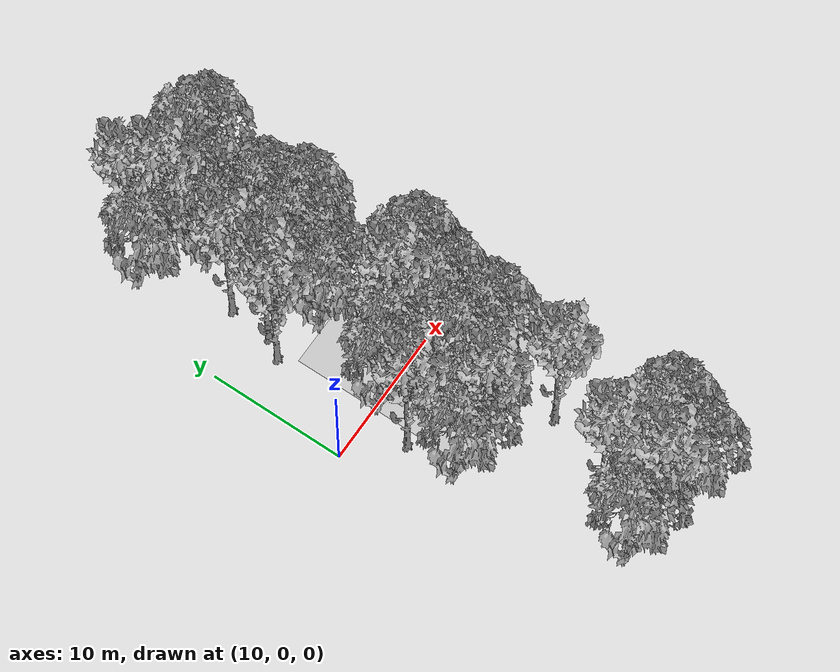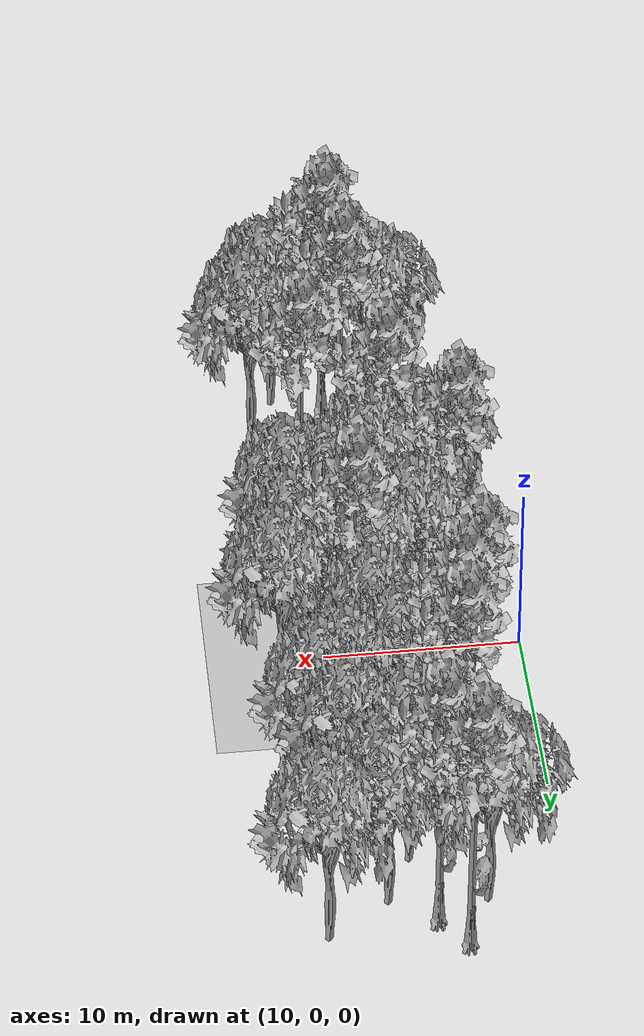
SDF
<sdf version="1.7">
 <world name="default">
  <model name="ground_plane">
   <static>1</static>
   <link name="link">
    <collision name="collision">
     <pose>20.0 0 0 0 -0 0</pose>
     <geometry><plane><normal>0 0 1</normal><size>40 40</size></plane></geometry>
     <surface><contact><ode><min_depth>0.01</min_depth><max_vel>0</max_vel></ode></contact></surface>
    </collision>
    <visual name="grass">
     <pose>20.0 0 0 0 -0 0</pose>
     <cast_shadows>0</cast_shadows>
     <geometry>
      <mesh>
       <scale>0.22052631578947368 0.22621621621621624 0.1</scale>
       <uri>model://grass_plane/meshes/grass_plane.dae</uri>
      </mesh>
     </geometry>
    </visual>
   </link>
  </model>
  <model name="Tree 5">
   <static>1</static>
   <pose>20.72942979063412 -19.918940171972803 0 1.57079 -0 0</pose>
   <link name="link">
    <collision name="collision">
     <geometry><mesh><scale>3.5 5 3.5</scale><uri>model://tree_2/meshes/tree_2.obj</uri></mesh></geometry>
    </collision>
    <visual name="visual">
     <geometry><mesh><scale>3.5 5 3.5</scale><uri>model://tree_2/meshes/tree_2.obj</uri></mesh></geometry>
    </visual>
   </link>
  </model>
  <model name="Tree 11">
   <static>1</static>
   <pose>13.791929790634121 17.11809686506424 0 1.57079 -0 0</pose>
   <link name="link">
    <collision name="collision">
     <geometry><mesh><scale>3.5 5 3.5</scale><uri>model://tree_2/meshes/tree_2.obj</uri></mesh></geometry>
    </collision>
    <visual name="visual">
     <geometry><mesh><scale>3.5 5 3.5</scale><uri>model://tree_2/meshes/tree_2.obj</uri></mesh></geometry>
    </visual>
   </link>
  </model>
  <model name="Tree 17">
   <static>1</static>
   <pose>17.26067979063412 14.155133902101277 0 1.57079 -0 0</pose>
   <link name="link">
    <collision name="collision">
     <geometry><mesh><scale>3.5 5 3.5</scale><uri>model://tree_2/meshes/tree_2.obj</uri></mesh></geometry>
    </collision>
    <visual name="visual">
     <geometry><mesh><scale>3.5 5 3.5</scale><uri>model://tree_2/meshes/tree_2.obj</uri></mesh></geometry>
    </visual>
   </link>
  </model>
  <model name="Tree 25">
   <static>1</static>
   <pose>19.57317979063412 9.710689457656834 0 1.57079 -0 0</pose>
   <link name="link">
    <collision name="collision">
     <geometry><mesh><scale>3.5 5 3.5</scale><uri>model://tree_2/meshes/tree_2.obj</uri></mesh></geometry>
    </collision>
    <visual name="visual">
     <geometry><mesh><scale>3.5 5 3.5</scale><uri>model://tree_2/meshes/tree_2.obj</uri></mesh></geometry>
    </visual>
   </link>
  </model>
  <model name="Tree 33">
   <static>1</static>
   <pose>16.68255479063412 -6.091779678145635 0 1.57079 -0 0</pose>
   <link name="link">
    <collision name="collision">
     <geometry><mesh><scale>3.5 5 3.5</scale><uri>model://tree_2/meshes/tree_2.obj</uri></mesh></geometry>
    </collision>
    <visual name="visual">
     <geometry><mesh><scale>3.5 5 3.5</scale><uri>model://tree_2/meshes/tree_2.obj</uri></mesh></geometry>
    </visual>
   </link>
  </model>
  <model name="Tree 37">
   <static>1</static>
   <pose>21.30755479063412 -0.16585375221971077 0 1.57079 -0 0</pose>
   <link name="link">
    <collision name="collision">
     <geometry><mesh><scale>3.5 5 3.5</scale><uri>model://tree_2/meshes/tree_2.obj</uri></mesh></geometry>
    </collision>
    <visual name="visual">
     <geometry><mesh><scale>3.5 5 3.5</scale><uri>model://tree_2/meshes/tree_2.obj</uri></mesh></geometry>
    </visual>
   </link>
  </model>
  <model name="Tree 43">
   <static>1</static>
   <pose>14.370054790634121 8.723035136669175 0 1.57079 -0 0</pose>
   <link name="link">
    <collision name="collision">
     <geometry><mesh><scale>3.5 5 3.5</scale><uri>model://tree_9/meshes/tree_9.obj</uri></mesh></geometry>
    </collision>
    <visual name="visual">
     <geometry><mesh><scale>3.5 5 3.5</scale><uri>model://tree_9/meshes/tree_9.obj</uri></mesh></geometry>
    </visual>
   </link>
  </model>
  <model name="Tree 49">
   <static>1</static>
   <pose>17.83880479063412 5.760072173706206 0 1.57079 -0 0</pose>
   <link name="link">
    <collision name="collision">
     <geometry><mesh><scale>3.5 5 3.5</scale><uri>model://tree_2/meshes/tree_2.obj</uri></mesh></geometry>
    </collision>
    <visual name="visual">
     <geometry><mesh><scale>3.5 5 3.5</scale><uri>model://tree_2/meshes/tree_2.obj</uri></mesh></geometry>
    </visual>
   </link>
  </model>
  <model name="Tree 51">
   <static>1</static>
   <pose>13.213804790634121 -3.1288167151826762 0 1.57079 -0 0</pose>
   <link name="link">
    <collision name="collision">
     <geometry><mesh><scale>3.5 5 3.5</scale><uri>model://tree_9/meshes/tree_9.obj</uri></mesh></geometry>
    </collision>
    <visual name="visual">
     <geometry><mesh><scale>3.5 5 3.5</scale><uri>model://tree_9/meshes/tree_9.obj</uri></mesh></geometry>
    </visual>
   </link>
  </model>
  <model name="Tree 57">
   <static>1</static>
   <pose>20.15130479063412 -10.042396962096252 0 1.57079 -0 0</pose>
   <link name="link">
    <collision name="collision">
     <geometry><mesh><scale>3.5 5 3.5</scale><uri>model://tree_9/meshes/tree_9.obj</uri></mesh></geometry>
    </collision>
    <visual name="visual">
     <geometry><mesh><scale>3.5 5 3.5</scale><uri>model://tree_9/meshes/tree_9.obj</uri></mesh></geometry>
    </visual>
   </link>
  </model>
  <model name="Tree 59">
   <static>1</static>
   <pose>15.526304790634121 -18.931285850985144 0 1.57079 -0 0</pose>
   <link name="link">
    <collision name="collision">
     <geometry><mesh><scale>3.5 5 3.5</scale><uri>model://tree_2/meshes/tree_2.obj</uri></mesh></geometry>
    </collision>
    <visual name="visual">
     <geometry><mesh><scale>3.5 5 3.5</scale><uri>model://tree_2/meshes/tree_2.obj</uri></mesh></geometry>
    </visual>
   </link>
  </model>
  <model name="Tree 65">
   <static>1</static>
   <pose>16.39349229063412 18.10575118605189 0 1.57079 -0 0</pose>
   <link name="link">
    <collision name="collision">
     <geometry><mesh><scale>3.5 5 3.5</scale><uri>model://tree_9/meshes/tree_9.obj</uri></mesh></geometry>
    </collision>
    <visual name="visual">
     <geometry><mesh><scale>3.5 5 3.5</scale><uri>model://tree_9/meshes/tree_9.obj</uri></mesh></geometry>
    </visual>
   </link>
  </model>
  <model name="Tree 69">
   <static>1</static>
   <pose>21.01849229063412 -4.116471036170335 0 1.57079 -0 0</pose>
   <link name="link">
    <collision name="collision">
     <geometry><mesh><scale>3.5 5 3.5</scale><uri>model://tree_2/meshes/tree_2.obj</uri></mesh></geometry>
    </collision>
    <visual name="visual">
     <geometry><mesh><scale>3.5 5 3.5</scale><uri>model://tree_2/meshes/tree_2.obj</uri></mesh></geometry>
    </visual>
   </link>
  </model>
  <model name="Tree 73">
   <static>1</static>
   <pose>18.70599229063412 1.8094548897555995 0 1.57079 -0 0</pose>
   <link name="link">
    <collision name="collision">
     <geometry><mesh><scale>3.5 5 3.5</scale><uri>model://tree_9/meshes/tree_9.obj</uri></mesh></geometry>
    </collision>
    <visual name="visual">
     <geometry><mesh><scale>3.5 5 3.5</scale><uri>model://tree_9/meshes/tree_9.obj</uri></mesh></geometry>
    </visual>
   </link>
  </model>
  <model name="Tree 75">
   <static>1</static>
   <pose>14.080992290634121 -7.079433999133293 0 1.57079 -0 0</pose>
   <link name="link">
    <collision name="collision">
     <geometry><mesh><scale>3.5 5 3.5</scale><uri>model://tree_2/meshes/tree_2.obj</uri></mesh></geometry>
    </collision>
    <visual name="visual">
     <geometry><mesh><scale>3.5 5 3.5</scale><uri>model://tree_2/meshes/tree_2.obj</uri></mesh></geometry>
    </visual>
   </link>
  </model>
  <model name="Tree 81">
   <static>1</static>
   <pose>17.54974229063412 -15.30988667403041 0 1.57079 -0 0</pose>
   <link name="link">
    <collision name="collision">
     <geometry><mesh><scale>3.5 5 3.5</scale><uri>model://tree_9/meshes/tree_9.obj</uri></mesh></geometry>
    </collision>
    <visual name="visual">
     <geometry><mesh><scale>3.5 5 3.5</scale><uri>model://tree_9/meshes/tree_9.obj</uri></mesh></geometry>
    </visual>
   </link>
  </model>
  <model name="Tree 85">
   <static>1</static>
   <pose>22.17474229063412 2.467891103747366 0 1.57079 -0 0</pose>
   <link name="link">
    <collision name="collision">
     <geometry><mesh><scale>3.5 5 3.5</scale><uri>model://tree_2/meshes/tree_2.obj</uri></mesh></geometry>
    </collision>
    <visual name="visual">
     <geometry><mesh><scale>3.5 5 3.5</scale><uri>model://tree_2/meshes/tree_2.obj</uri></mesh></geometry>
    </visual>
   </link>
  </model>
  <model name="Tree 89">
   <static>1</static>
   <pose>19.86224229063412 12.838261474117736 0 1.57079 -0 0</pose>
   <link name="link">
    <collision name="collision">
     <geometry><mesh><scale>3.5 5 3.5</scale><uri>model://tree_2/meshes/tree_2.obj</uri></mesh></geometry>
    </collision>
    <visual name="visual">
     <geometry><mesh><scale>3.5 5 3.5</scale><uri>model://tree_2/meshes/tree_2.obj</uri></mesh></geometry>
    </visual>
   </link>
  </model>
  <model name="Tree 91">
   <static>1</static>
   <pose>15.237242290634121 -0.49507185921559227 0 1.57079 -0 0</pose>
   <link name="link">
    <collision name="collision">
     <geometry><mesh><scale>3.5 5 3.5</scale><uri>model://tree_2/meshes/tree_2.obj</uri></mesh></geometry>
    </collision>
    <visual name="visual">
     <geometry><mesh><scale>3.5 5 3.5</scale><uri>model://tree_2/meshes/tree_2.obj</uri></mesh></geometry>
    </visual>
   </link>
  </model>
  <model name="Tree 97">
   <static>1</static>
   <pose>16.97161729063412 8.393817029673283 0 1.57079 -0 0</pose>
   <link name="link">
    <collision name="collision">
     <geometry><mesh><scale>3.5 5 3.5</scale><uri>model://tree_2/meshes/tree_2.obj</uri></mesh></geometry>
    </collision>
    <visual name="visual">
     <geometry><mesh><scale>3.5 5 3.5</scale><uri>model://tree_2/meshes/tree_2.obj</uri></mesh></geometry>
    </visual>
   </link>
  </model>
  <model name="Tree 101">
   <static>1</static>
   <pose>21.59661729063412 18.764187400043667 0 1.57079 -0 0</pose>
   <link name="link">
    <collision name="collision">
     <geometry><mesh><scale>3.5 5 3.5</scale><uri>model://tree_2/meshes/tree_2.obj</uri></mesh></geometry>
    </collision>
    <visual name="visual">
     <geometry><mesh><scale>3.5 5 3.5</scale><uri>model://tree_2/meshes/tree_2.obj</uri></mesh></geometry>
    </visual>
   </link>
  </model>
  <model name="Tree 105">
   <static>1</static>
   <pose>19.28411729063412 -3.4580348221785613 0 1.57079 -0 0</pose>
   <link name="link">
    <collision name="collision">
     <geometry><mesh><scale>3.5 5 3.5</scale><uri>model://tree_2/meshes/tree_2.obj</uri></mesh></geometry>
    </collision>
    <visual name="visual">
     <geometry><mesh><scale>3.5 5 3.5</scale><uri>model://tree_2/meshes/tree_2.obj</uri></mesh></geometry>
    </visual>
   </link>
  </model>
  <model name="Tree 107">
   <static>1</static>
   <pose>14.659117290634121 11.850607153130085 0 1.57079 -0 0</pose>
   <link name="link">
    <collision name="collision">
     <geometry><mesh><scale>3.5 5 3.5</scale><uri>model://tree_9/meshes/tree_9.obj</uri></mesh></geometry>
    </collision>
    <visual name="visual">
     <geometry><mesh><scale>3.5 5 3.5</scale><uri>model://tree_9/meshes/tree_9.obj</uri></mesh></geometry>
    </visual>
   </link>
  </model>
  <model name="Tree 113">
   <static>1</static>
   <pose>18.12786729063412 -19.26050395798103 0 1.57079 -0 0</pose>
   <link name="link">
    <collision name="collision">
     <geometry><mesh><scale>3.5 5 3.5</scale><uri>model://tree_9/meshes/tree_9.obj</uri></mesh></geometry>
    </collision>
    <visual name="visual">
     <geometry><mesh><scale>3.5 5 3.5</scale><uri>model://tree_9/meshes/tree_9.obj</uri></mesh></geometry>
    </visual>
   </link>
  </model>
  <model name="Tree 115">
   <static>1</static>
   <pose>13.502867290634121 7.406162708685642 0 1.57079 -0 0</pose>
   <link name="link">
    <collision name="collision">
     <geometry><mesh><scale>3.5 5 3.5</scale><uri>model://tree_9/meshes/tree_9.obj</uri></mesh></geometry>
    </collision>
    <visual name="visual">
     <geometry><mesh><scale>3.5 5 3.5</scale><uri>model://tree_9/meshes/tree_9.obj</uri></mesh></geometry>
    </visual>
   </link>
  </model>
  <model name="Tree 129">
   <static>1</static>
   <pose>16.24896104063412 -7.4086521061291855 0 1.57079 -0 0</pose>
   <link name="link">
    <collision name="collision">
     <geometry><mesh><scale>3.5 5 3.5</scale><uri>model://tree_9/meshes/tree_9.obj</uri></mesh></geometry>
    </collision>
    <visual name="visual">
     <geometry><mesh><scale>3.5 5 3.5</scale><uri>model://tree_9/meshes/tree_9.obj</uri></mesh></geometry>
    </visual>
   </link>
  </model>
  <model name="Tree 133">
   <static>1</static>
   <pose>20.87396104063412 10.3691256716486 0 1.57079 -0 0</pose>
   <link name="link">
    <collision name="collision">
     <geometry><mesh><scale>3.5 5 3.5</scale><uri>model://tree_2/meshes/tree_2.obj</uri></mesh></geometry>
    </collision>
    <visual name="visual">
     <geometry><mesh><scale>3.5 5 3.5</scale><uri>model://tree_2/meshes/tree_2.obj</uri></mesh></geometry>
    </visual>
   </link>
  </model>
  <model name="Tree 137">
   <static>1</static>
   <pose>18.56146104063412 16.788878758068357 0 1.57079 -0 0</pose>
   <link name="link">
    <collision name="collision">
     <geometry><mesh><scale>3.5 5 3.5</scale><uri>model://tree_2/meshes/tree_2.obj</uri></mesh></geometry>
    </collision>
    <visual name="visual">
     <geometry><mesh><scale>3.5 5 3.5</scale><uri>model://tree_2/meshes/tree_2.obj</uri></mesh></geometry>
    </visual>
   </link>
  </model>
  <model name="Tree 145">
   <static>1</static>
   <pose>17.40521104063412 0.49258246177205933 0 1.57079 -0 0</pose>
   <link name="link">
    <collision name="collision">
     <geometry><mesh><scale>3.5 5 3.5</scale><uri>model://tree_2/meshes/tree_2.obj</uri></mesh></geometry>
    </collision>
    <visual name="visual">
     <geometry><mesh><scale>3.5 5 3.5</scale><uri>model://tree_2/meshes/tree_2.obj</uri></mesh></geometry>
    </visual>
   </link>
  </model>
  <model name="Tree 149">
   <static>1</static>
   <pose>22.03021104063412 -17.28519531600572 0 1.57079 -0 0</pose>
   <link name="link">
    <collision name="collision">
     <geometry><mesh><scale>3.5 5 3.5</scale><uri>model://tree_2/meshes/tree_2.obj</uri></mesh></geometry>
    </collision>
    <visual name="visual">
     <geometry><mesh><scale>3.5 5 3.5</scale><uri>model://tree_2/meshes/tree_2.obj</uri></mesh></geometry>
    </visual>
   </link>
  </model>
  <model name="Tree 155">
   <static>1</static>
   <pose>15.092711040634121 19.75184172103132 0 1.57079 -0 0</pose>
   <link name="link">
    <collision name="collision">
     <geometry><mesh><scale>3.5 5 3.5</scale><uri>model://tree_9/meshes/tree_9.obj</uri></mesh></geometry>
    </collision>
    <visual name="visual">
     <geometry><mesh><scale>3.5 5 3.5</scale><uri>model://tree_9/meshes/tree_9.obj</uri></mesh></geometry>
    </visual>
   </link>
  </model>
 </world>
</sdf>
